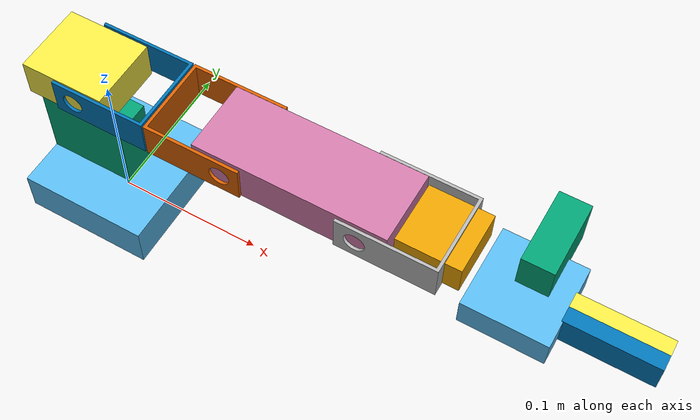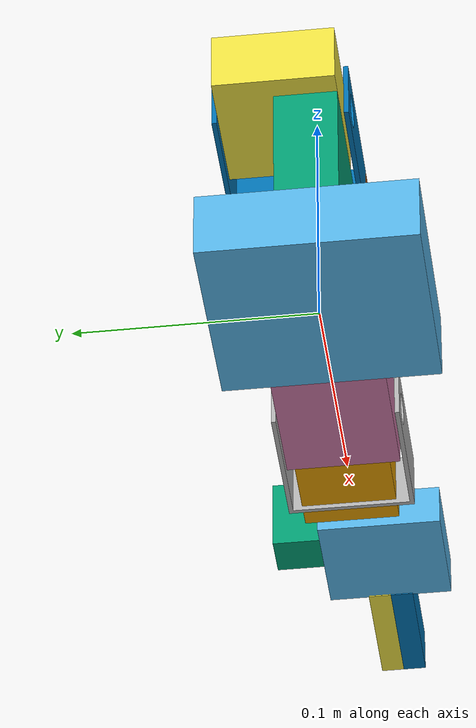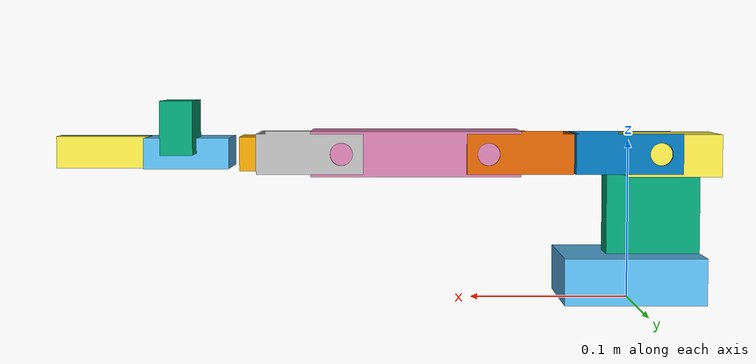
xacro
<?xml version="1.0"?>
<robot xmlns:xacro="http://www.ros.org/wiki/xacro" name="braccio" version="1.2">
    <xacro:arg name="initial_positions_file" default="initial_positions.yaml" />

    <!-- Import braccio urdf file -->
    <xacro:include filename="$(find braccio_simulation)/model/urdf/braccio.urdf.xacro" />

    <!-- Import control_xacro -->
    <xacro:include filename="braccio.ros2_control.xacro" />

    <xacro:braccio_ros2_control name="FakeSystem" initial_positions_file="$(arg initial_positions_file)"/>

</robot>

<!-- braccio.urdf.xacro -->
<robot xmlns:xacro="http://wiki.ros.org/xacro" name="braccio" version="1.2">

  <!-- Import r6bot macro -->
  <xacro:include filename="$(find braccio_simulation)/model/urdf/braccio_description.urdf.xacro"/>

  <!-- create link fixed to the "world" -->
  <link name="world"/>

  <xacro:braccio_description/>

</robot>

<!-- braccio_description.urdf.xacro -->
<robot xmlns:xacro="http://www.ros.org/wiki/xacro" version="1.2">

  <xacro:macro name="braccio_description">

    <!-- Load the YAML file -->

    <!-- helper macro -->

    <xacro:property name="pi2" value="1.570796327" />

    <xacro:include filename="$(find braccio_simulation)/model/urdf/inc/create_link.xacro"/>

    <xacro:create_link_from_box
        link_name="base_link"
        xyz_offset="0 0 0.0145"
        rpy_offset="0 0 0"
        dim_box="0.088 0.090 0.029"
    />

    <xacro:create_link_from_box
        link_name="base_vert_servo_rot"
        xyz_offset="0 0 0"
        rpy_offset="0 0 0"
        dim_box="0.059 0.026 0.050"
    />
    <xacro:create_link_from_box
        link_name="base_servo_ud"
        xyz_offset="0.002 0.012 0.013"
        rpy_offset="0 0 0"
        dim_box="0.058 0.050 0.026"
    />

    <xacro:create_link_from_mesh
        link_name="arm_1_up_down_p1"
        xyz_offset="0 0 0"
        rpy_offset="0 0 -${pi2}"
        mesh_package="$(find braccio_simulation)/model/3Dparts"
        mesh_name="ModelARM-Body.stl"
    />

    <xacro:create_link_from_mesh
        link_name="arm_1_up_down_p2"
        xyz_offset="0 0 0"
        rpy_offset="${pi} 0 -${pi2}"
        mesh_package="$(find braccio_simulation)/model/3Dparts"
        mesh_name="ModelARM-Body.stl"
    />

    <xacro:create_link_from_box
        link_name="arm_2_up_down"
        xyz_offset="0.045 -0.001 0"
        rpy_offset="0 0 0"
        dim_box="0.13 0.050 0.028"
    />

    <xacro:create_link_from_mesh
        link_name="arm_3_up_down"
        xyz_offset="0 0 0"
        rpy_offset="0 0 -${pi2}"
        mesh_package="$(find braccio_simulation)/model/3Dparts"
        mesh_name="ModelARM-Body.stl"
    />

    <xacro:create_link_from_box
        link_name="box_servo_rot"
        xyz_offset="0 0 0"
        rpy_offset="0 0 0"
        dim_box="0.042 0.042 0.021"
    />

    <xacro:create_link_from_box
        link_name="rot_grasp"
        xyz_offset="0.0265 0 0"
        rpy_offset="0 0 0"
        dim_box="0.053 0.055 0.019"
    />

    <xacro:create_link_from_box
        link_name="grasp_box"
        xyz_offset="0.03 0.025 0.0165"
        rpy_offset="0 0 0"
        dim_box="0.020 0.050 0.033"
    />

    <xacro:create_link_from_box
        link_name="grasp_l"
        xyz_offset="0.029 0.005 0"
        rpy_offset="0 0 0"
        dim_box="0.058 0.010 0.020"
    />

    <xacro:create_link_from_box
        link_name="grasp_r"
        xyz_offset="0.029 -0.005 0"
        rpy_offset="0 0 0"
        dim_box="0.058 0.010 0.020"
    />

    <joint name="world_joint" type="fixed">
      <parent link="world"/>
      <child link="base_link"/>
      <origin rpy="0 0 0" xyz="0 0 0"/>
    </joint>

    <joint name="baseup_link" type="fixed">
      <parent link="base_link"/>
      <child link="base_vert_servo_rot"/>
      <origin xyz="-0.0145 0 0.054"/>
    </joint>

    <joint name="arm_rot" type="revolute">
      <axis xyz="0 0 1"/>
      <limit effort="1000.0" lower="-${pi2}" upper="${pi2}" velocity="0.5" acceleration="1.0"/>
      <parent link="base_vert_servo_rot"/>
      <child link="base_servo_ud"/>
      <origin xyz="-0.012 0 0.025"/>
    </joint>

    <joint name="arm_1_up_down" type="revolute">
      <axis xyz="0 1 0"/>
      <limit effort="1000.0" lower="-${pi2}" upper="${pi2}" velocity="0.5" acceleration="1.0"/>
      <parent link="base_servo_ud"/>
      <child link="arm_1_up_down_p1"/>
      <origin xyz="0.011 0.013 0.014"/>
    </joint>

    <joint name="arm_1_up_down_2" type="fixed">
      <parent link="arm_1_up_down_p1"/>
      <child link="arm_1_up_down_p2"/>
      <origin xyz="0.106 0.0 0.0"/>
    </joint>

    <joint name="arm_2_up_down" type="revolute">
      <axis xyz="0 1 0"/>
      <limit effort="1000.0" lower="-${pi2}" upper="${pi2}" velocity="0.5" acceleration="1.0"/>
      <parent link="arm_1_up_down_p2"/>
      <child link="arm_2_up_down"/>
      <origin xyz="0.0 0.0 0"/>
    </joint>

    <joint name="arm_3_up_down" type="revolute">
      <axis xyz="0 1 0"/>
      <limit effort="1000.0" lower="-${pi2}" upper="${pi2}" velocity="0.5" acceleration="1.0"/>
      <parent link="arm_2_up_down"/>
      <child link="arm_3_up_down"/>
      <origin xyz="0.091 0 0"/>
    </joint>

    <joint name="supServoRot" type="fixed">
      <parent link="arm_3_up_down"/>
      <child link="box_servo_rot"/>
      <origin xyz="0.042 0 0"/>
    </joint>

    <joint name="rot_grasp" type="revolute">
      <axis xyz="1 0 0"/>
      <limit effort="1000.0" lower="-${pi2}" upper="${pi2}" velocity="0.5" acceleration="1.0"/>
      <parent link="box_servo_rot"/>
      <child link="rot_grasp"/>
      <origin xyz="0.028 -0.011 0"/>
    </joint>

    <joint name="rotation_grip" type="fixed">
      <parent link="rot_grasp"/>
      <child link="grasp_box"/>
      <origin xyz="0 0 0"/>
    </joint>

    <joint name="grasp_ctrl" type="prismatic">
      <axis xyz="0 1 0"/>
      <limit
        lower="0"
        upper="0.03"
        velocity="2.0"
        acceleration="1.0"
        effort="1000" />
      <parent link="rot_grasp"/>
      <child link="grasp_l"/>
      <origin xyz="0.052 0 0"/>
    </joint>

    <joint name="grasp_mirror" type="prismatic">
      <axis xyz="0 -1 0"/>
      <limit
        lower="0"
        upper="0.03"
        velocity="2.0"
         acceleration="1.0"
        effort="1000" />
      <parent link="rot_grasp"/>
      <child link="grasp_r"/>
      <origin xyz="0.052 0 0"/>
      <mimic
        joint="grasp_ctrl"
        multiplier="1"
        offset="0" />
    </joint>

  <link name="tool0"/>
  <joint name="joint-tool" type="fixed">
    <parent link="rot_grasp"/>
    <child link="tool0"/>
    <origin xyz="0.07 0 0" rpy="0 0 0"/>
  </joint>

  <link name="tool01"/>
  <joint name="joint-tool01" type="fixed">
    <parent link="box_servo_rot"/>
    <child link="tool01"/>
    <origin xyz="0.098 -0.011 0" rpy="0 0 0"/>
  </joint>

  </xacro:macro>

</robot>

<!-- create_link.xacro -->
<robot xmlns:xacro="http://wiki.ros.org/xacro">

  <xacro:macro name="create_link_from_box" params="
        link_name
        xyz_offset
        rpy_offset
        dim_box">
    <link name="${link_name}">
      <visual>
        <origin xyz="${xyz_offset}" rpy="${rpy_offset}"/>
        <geometry>
          <box size="${dim_box}"/>
        </geometry>
      </visual>
      <collision>
        <origin xyz="${xyz_offset}" rpy="${rpy_offset}"/>
        <geometry>
          <box size="${dim_box}"/>
        </geometry>
      </collision>
      <inertial>
        <mass value="1"/>
        <inertia ixx="1.0" ixy="0.0" ixz="0.0" iyy="1.0" iyz="0.0" izz="1.0"/>
      </inertial>
    </link>
  </xacro:macro>

  <xacro:macro name="create_link_from_mesh" params="
        link_name
        xyz_offset
        rpy_offset
        mesh_package
        mesh_name">
    <link name="${link_name}">
      <visual>
        <origin xyz="${xyz_offset}" rpy="${rpy_offset}"/>
        <geometry>
          <mesh filename="file://${mesh_package}/${mesh_name}" scale="0.001 0.001 0.001"/>
        </geometry>
      </visual>
      <collision>
        <origin xyz="${xyz_offset}" rpy="${rpy_offset}"/>
        <geometry>
          <mesh filename="file://${mesh_package}/${mesh_name}" scale="0.001 0.001 0.001"/>
        </geometry>
      </collision>
      <inertial>
        <mass value="1"/>
        <inertia ixx="1.0" ixy="0.0" ixz="0.0" iyy="1.0" iyz="0.0" izz="1.0"/>
      </inertial>
    </link>
  </xacro:macro>
</robot>
